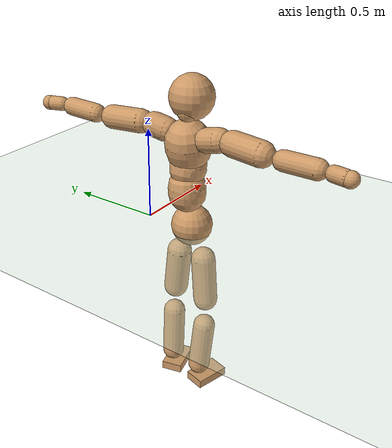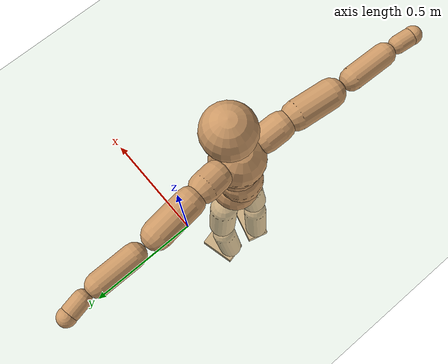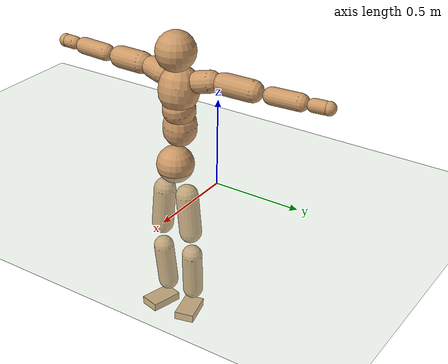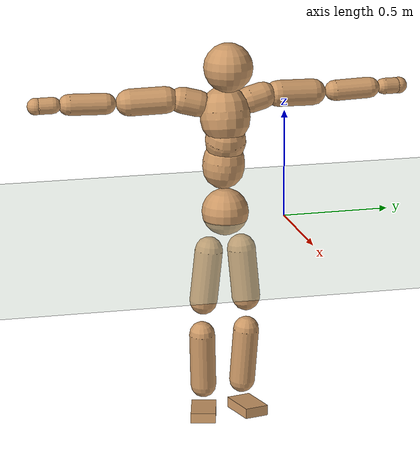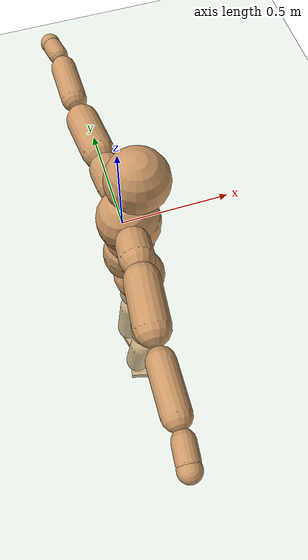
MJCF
<mujoco model="humanoid">
  <compiler coordinate="local"/>
  <default>
    <joint damping="0.0" armature="0.01" stiffness="0.0" limited="true"/>
    <geom conaffinity="1" condim="3" contype="7" margin="0.001" rgba="0.8 0.6 .4 1"/>
  </default>
  <asset>
    <texture type="skybox" builtin="gradient" rgb1=".4 .5 .6" rgb2="0 0 0" width="100" height="100"/>
    <texture builtin="flat" height="1278" mark="cross" markrgb="1 1 1" name="texgeom" random="0.01" rgb1="0.8 0.6 0.4" rgb2="0.8 0.6 0.4" type="cube" width="127"/>
    <texture builtin="checker" height="100" name="texplane" rgb1="0 0 0" rgb2="0.8 0.8 0.8" type="2d" width="100"/>
    <material name="MatPlane" reflectance="0.5" shininess="1" specular="1" texrepeat="60 60" texture="texplane"/>
    <material name="geom" texture="texgeom" texuniform="true"/>
  </asset>
  <worldbody>
    <light cutoff="100" diffuse="1 1 1" dir="-0 0 -1.3" directional="true" exponent="1" pos="0 0 1.3" specular=".1 .1 .1"/>
    <geom conaffinity="1" condim="3" name="floor" pos="0 0 0" rgba="0.8 0.9 0.8 1" size="100 100 .2" type="plane" material="MatPlane"/>
    <body name="Pelvis" pos="-0.0038 -0.2801 0.0365">
      <freejoint name="Pelvis"/>
      <geom type="sphere" contype="1" conaffinity="1" density="500" size="0.1092" pos="0.0000 0.0000 0.0000" name="Pelvis"/>
      <body name="L_Hip" pos="-0.0012 0.0701 -0.1029">
        <joint name="L_Hip_x" type="hinge" pos="0 0 0" axis="1 0 0" stiffness="800" damping="80" armature="0.02" range="-180.0000 180.0000"/>
        <joint name="L_Hip_y" type="hinge" pos="0 0 0" axis="0 1 0" stiffness="800" damping="80" armature="0.02" range="-180.0000 180.0000"/>
        <joint name="L_Hip_z" type="hinge" pos="0 0 0" axis="0 0 1" stiffness="800" damping="80" armature="0.02" range="-180.0000 180.0000"/>
        <geom type="capsule" contype="1" conaffinity="1" density="500" fromto="-0.0007 0.0078 -0.0791 -0.0030 0.0313 -0.3162" size="0.0661" name="L_Hip"/>
        <body name="L_Knee" pos="-0.0037 0.0391 -0.3953">
          <joint name="L_Knee_x" type="hinge" pos="0 0 0" axis="1 0 0" stiffness="800" damping="80" armature="0.02" range="-180.0000 180.0000"/>
          <joint name="L_Knee_y" type="hinge" pos="0 0 0" axis="0 1 0" stiffness="800" damping="80" armature="0.02" range="-180.0000 180.0000"/>
          <joint name="L_Knee_z" type="hinge" pos="0 0 0" axis="0 0 1" stiffness="800" damping="80" armature="0.02" range="-180.0000 180.0000"/>
          <geom type="capsule" contype="1" conaffinity="1" density="500" fromto="-0.0095 -0.0040 -0.0864 -0.0381 -0.0158 -0.3457" size="0.0603" name="L_Knee"/>
          <body name="L_Ankle" pos="-0.0477 -0.0198 -0.4322">
            <joint name="L_Ankle_x" type="hinge" pos="0 0 0" axis="1 0 0" stiffness="800" damping="80" armature="0.02" range="-180.0000 180.0000"/>
            <joint name="L_Ankle_y" type="hinge" pos="0 0 0" axis="0 1 0" stiffness="800" damping="80" armature="0.02" range="-180.0000 180.0000"/>
            <joint name="L_Ankle_z" type="hinge" pos="0 0 0" axis="0 0 1" stiffness="800" damping="80" armature="0.02" range="-180.0000 180.0000"/>
            <geom type="box" contype="1" conaffinity="1" density="500" pos="0.0671 0.0164 -0.0294" size="0.0941 0.0573 0.0241" quat="0.9929 0.0000 0.0000 0.1192" name="L_Ankle"/>
            <body name="L_Toe" pos="0.1342 0.0327 -0.0588">
              <joint name="L_Toe_x" type="hinge" pos="0 0 0" axis="1 0 0" stiffness="500" damping="50" armature="0.02" range="-180.0000 180.0000"/>
              <joint name="L_Toe_y" type="hinge" pos="0 0 0" axis="0 1 0" stiffness="500" damping="50" armature="0.02" range="-180.0000 180.0000"/>
              <joint name="L_Toe_z" type="hinge" pos="0 0 0" axis="0 0 1" stiffness="500" damping="50" armature="0.02" range="-180.0000 180.0000"/>
              <geom type="box" contype="1" conaffinity="1" density="500" pos="0.0000 0.0000 0.0288" size="0.0012 0.0028 0.0012" quat="0.9922 0.0000 0.0000 0.1244" name="L_Toe"/>
            </body>
          </body>
        </body>
      </body>
      <body name="R_Hip" pos="0 -0.0694 -0.1016">
        <joint name="R_Hip_x" type="hinge" pos="0 0 0" axis="1 0 0" stiffness="800" damping="80" armature="0.02" range="-180.0000 180.0000"/>
        <joint name="R_Hip_y" type="hinge" pos="0 0 0" axis="0 1 0" stiffness="800" damping="80" armature="0.02" range="-180.0000 180.0000"/>
        <joint name="R_Hip_z" type="hinge" pos="0 0 0" axis="0 0 1" stiffness="800" damping="80" armature="0.02" range="-180.0000 180.0000"/>
        <geom type="capsule" contype="1" conaffinity="1" density="500" fromto="-0.0025 -0.0080 -0.0815 -0.0099 -0.0322 -0.3261" size="0.0647" name="R_Hip"/>
        <body name="R_Knee" pos="-0.0124 -0.0402 -0.4076">
          <joint name="R_Knee_x" type="hinge" pos="0 0 0" axis="1 0 0" stiffness="800" damping="80" armature="0.02" range="-180.0000 180.0000"/>
          <joint name="R_Knee_y" type="hinge" pos="0 0 0" axis="0 1 0" stiffness="800" damping="80" armature="0.02" range="-180.0000 180.0000"/>
          <joint name="R_Knee_z" type="hinge" pos="0 0 0" axis="0 0 1" stiffness="800" damping="80" armature="0.02" range="-180.0000 180.0000"/>
          <geom type="capsule" contype="1" conaffinity="1" density="500" fromto="-0.0094 0.0042 -0.0869 -0.0374 0.0168 -0.3476" size="0.0598" name="R_Knee"/>
          <body name="R_Ankle" pos="-0.0468 0.021 -0.4345">
            <joint name="R_Ankle_x" type="hinge" pos="0 0 0" axis="1 0 0" stiffness="800" damping="80" armature="0.02" range="-180.0000 180.0000"/>
            <joint name="R_Ankle_y" type="hinge" pos="0 0 0" axis="0 1 0" stiffness="800" damping="80" armature="0.02" range="-180.0000 180.0000"/>
            <joint name="R_Ankle_z" type="hinge" pos="0 0 0" axis="0 0 1" stiffness="800" damping="80" armature="0.02" range="-180.0000 180.0000"/>
            <geom type="box" contype="1" conaffinity="1" density="500" pos="0.0698 -0.0182 -0.0264" size="0.0964 0.058 0.0237" quat="0.9919 0.0000 0.0000 -0.1272" name="R_Ankle"/>
            <body name="R_Toe" pos="0.1396 -0.0364 -0.0528">
              <joint name="R_Toe_x" type="hinge" pos="0 0 0" axis="1 0 0" stiffness="500" damping="50" armature="0.02" range="-180.0000 180.0000"/>
              <joint name="R_Toe_y" type="hinge" pos="0 0 0" axis="0 1 0" stiffness="500" damping="50" armature="0.02" range="-180.0000 180.0000"/>
              <joint name="R_Toe_z" type="hinge" pos="0 0 0" axis="0 0 1" stiffness="500" damping="50" armature="0.02" range="-180.0000 180.0000"/>
              <geom type="box" contype="1" conaffinity="1" density="500" pos="0.0000 0.0000 0.0274" size="0.0013 0.0028 0.0012" quat="0.9929 0.0000 0.0000 -0.1189" name="R_Toe"/>
            </body>
          </body>
        </body>
      </body>
      <body name="Torso" pos="-0.0451 -0.0027 0.1328">
        <joint name="Torso_x" type="hinge" pos="0 0 0" axis="1 0 0" stiffness="1000" damping="100" armature="0.02" range="-180.0000 180.0000"/>
        <joint name="Torso_y" type="hinge" pos="0 0 0" axis="0 1 0" stiffness="1000" damping="100" armature="0.02" range="-180.0000 180.0000"/>
        <joint name="Torso_z" type="hinge" pos="0 0 0" axis="0 0 1" stiffness="1000" damping="100" armature="0.02" range="-180.0000 180.0000"/>
        <geom type="capsule" contype="1" conaffinity="1" density="500" fromto="0.0043 0.0066 0.0989 0.0029 0.0044 0.0660" size="0.0975" name="Torso"/>
        <body name="Spine" pos="0.0072 0.011 0.1649">
          <joint name="Spine_x" type="hinge" pos="0 0 0" axis="1 0 0" stiffness="1000" damping="100" armature="0.02" range="-180.0000 180.0000"/>
          <joint name="Spine_y" type="hinge" pos="0 0 0" axis="0 1 0" stiffness="1000" damping="100" armature="0.02" range="-180.0000 180.0000"/>
          <joint name="Spine_z" type="hinge" pos="0 0 0" axis="0 0 1" stiffness="1000" damping="100" armature="0.02" range="-180.0000 180.0000"/>
          <geom type="capsule" contype="1" conaffinity="1" density="500" fromto="0.0150 -0.0001 0.0406 0.0100 -0.0001 0.0271" size="0.0944" name="Spine"/>
          <body name="Chest" pos="0.0249 -0.0002 0.0677">
            <joint name="Chest_x" type="hinge" pos="0 0 0" axis="1 0 0" stiffness="1000" damping="100" armature="0.02" range="-180.0000 180.0000"/>
            <joint name="Chest_y" type="hinge" pos="0 0 0" axis="0 1 0" stiffness="1000" damping="100" armature="0.02" range="-180.0000 180.0000"/>
            <joint name="Chest_z" type="hinge" pos="0 0 0" axis="0 0 1" stiffness="1000" damping="100" armature="0.02" range="-180.0000 180.0000"/>
            <geom type="capsule" contype="1" conaffinity="1" density="500" fromto="-0.0204 -0.0020 0.1043 -0.0136 -0.0013 0.0696" size="0.1163" name="Chest"/>
            <body name="Neck" pos="-0.0354 -0.0041 0.244">
              <joint name="Neck_x" type="hinge" pos="0 0 0" axis="1 0 0" stiffness="500" damping="50" armature="0.02" range="-180.0000 180.0000"/>
              <joint name="Neck_y" type="hinge" pos="0 0 0" axis="0 1 0" stiffness="500" damping="50" armature="0.02" range="-180.0000 180.0000"/>
              <joint name="Neck_z" type="hinge" pos="0 0 0" axis="0 0 1" stiffness="500" damping="50" armature="0.02" range="-180.0000 180.0000"/>
              <geom type="capsule" contype="1" conaffinity="1" density="500" fromto="0.0111 0.0017 0.0144 0.0446 0.0067 0.0577" size="0.0532" name="Neck"/>
              <body name="Head" pos="0.0557 0.0084 0.0721">
                <joint name="Head_x" type="hinge" pos="0 0 0" axis="1 0 0" stiffness="500" damping="50" armature="0.02" range="-180.0000 180.0000"/>
                <joint name="Head_y" type="hinge" pos="0 0 0" axis="0 1 0" stiffness="500" damping="50" armature="0.02" range="-180.0000 180.0000"/>
                <joint name="Head_z" type="hinge" pos="0 0 0" axis="0 0 1" stiffness="500" damping="50" armature="0.02" range="-180.0000 180.0000"/>
                <geom type="sphere" contype="1" conaffinity="1" density="500" size="0.1140" pos="0.0000 0.0000 0.0000" name="Head"/>
              </body>
            </body>
            <body name="L_Thorax" pos="-0.0314 0.0948 0.1413">
              <joint name="L_Thorax_x" type="hinge" pos="0 0 0" axis="1 0 0" stiffness="500" damping="50" armature="0.02" range="-180.0000 180.0000"/>
              <joint name="L_Thorax_y" type="hinge" pos="0 0 0" axis="0 1 0" stiffness="500" damping="50" armature="0.02" range="-180.0000 180.0000"/>
              <joint name="L_Thorax_z" type="hinge" pos="0 0 0" axis="0 0 1" stiffness="500" damping="50" armature="0.02" range="-180.0000 180.0000"/>
              <geom type="capsule" contype="1" conaffinity="1" density="500" fromto="-0.0032 0.0221 0.0051 -0.0126 0.0885 0.0203" size="0.0629" name="L_Thorax"/>
              <body name="L_Shoulder" pos="-0.0158 0.1106 0.0253">
                <joint name="L_Shoulder_x" type="hinge" pos="0 0 0" axis="1 0 0" stiffness="500" damping="50" armature="0.02" range="-720.0000 720.0000"/>
                <joint name="L_Shoulder_y" type="hinge" pos="0 0 0" axis="0 1 0" stiffness="500" damping="50" armature="0.02" range="-720.0000 720.0000"/>
                <joint name="L_Shoulder_z" type="hinge" pos="0 0 0" axis="0 0 1" stiffness="500" damping="50" armature="0.02" range="-720.0000 720.0000"/>
                <geom type="capsule" contype="1" conaffinity="1" density="500" fromto="-0.0058 0.0559 -0.0023 -0.0232 0.2237 -0.0091" size="0.0618" name="L_Shoulder"/>
                <body name="L_Elbow" pos="-0.029 0.2796 -0.0114">
                  <joint name="L_Elbow_x" type="hinge" pos="0 0 0" axis="1 0 0" stiffness="500" damping="50" armature="0.02" range="-720.0000 720.0000"/>
                  <joint name="L_Elbow_y" type="hinge" pos="0 0 0" axis="0 1 0" stiffness="500" damping="50" armature="0.02" range="-720.0000 720.0000"/>
                  <joint name="L_Elbow_z" type="hinge" pos="0 0 0" axis="0 0 1" stiffness="500" damping="50" armature="0.02" range="-720.0000 720.0000"/>
                  <geom type="capsule" contype="1" conaffinity="1" density="500" fromto="-0.0006 0.0549 0.0016 -0.0024 0.2195 0.0065" size="0.0487" name="L_Elbow"/>
                  <body name="L_Wrist" pos="-0.003 0.2744 0.0081">
                    <joint name="L_Wrist_x" type="hinge" pos="0 0 0" axis="1 0 0" stiffness="300" damping="30" armature="0.02" range="-180.0000 180.0000"/>
                    <joint name="L_Wrist_y" type="hinge" pos="0 0 0" axis="0 1 0" stiffness="300" damping="30" armature="0.02" range="-180.0000 180.0000"/>
                    <joint name="L_Wrist_z" type="hinge" pos="0 0 0" axis="0 0 1" stiffness="300" damping="30" armature="0.02" range="-180.0000 180.0000"/>
                    <geom type="capsule" contype="1" conaffinity="1" density="500" fromto="-0.0039 0.0193 -0.0008 -0.0156 0.0773 -0.0031" size="0.0374" name="L_Wrist"/>
                    <body name="L_Hand" pos="-0.0195 0.0967 -0.0039">
                      <joint name="L_Hand_x" type="hinge" pos="0 0 0" axis="1 0 0" stiffness="300" damping="30" armature="0.02" range="-180.0000 180.0000"/>
                      <joint name="L_Hand_y" type="hinge" pos="0 0 0" axis="0 1 0" stiffness="300" damping="30" armature="0.02" range="-180.0000 180.0000"/>
                      <joint name="L_Hand_z" type="hinge" pos="0 0 0" axis="0 0 1" stiffness="300" damping="30" armature="0.02" range="-180.0000 180.0000"/>
                      <geom type="sphere" contype="1" conaffinity="1" density="500" size="0.0385" pos="0.0000 0.0000 0.0000" name="L_Hand"/>
                    </body>
                  </body>
                </body>
              </body>
            </body>
            <body name="R_Thorax" pos="-0.0351 -0.1005 0.1363">
              <joint name="R_Thorax_x" type="hinge" pos="0 0 0" axis="1 0 0" stiffness="500" damping="50" armature="0.02" range="-180.0000 180.0000"/>
              <joint name="R_Thorax_y" type="hinge" pos="0 0 0" axis="0 1 0" stiffness="500" damping="50" armature="0.02" range="-180.0000 180.0000"/>
              <joint name="R_Thorax_z" type="hinge" pos="0 0 0" axis="0 0 1" stiffness="500" damping="50" armature="0.02" range="-180.0000 180.0000"/>
              <geom type="capsule" contype="1" conaffinity="1" density="500" fromto="-0.0019 -0.0239 0.0061 -0.0076 -0.0955 0.0243" size="0.0618" name="R_Thorax"/>
              <body name="R_Shoulder" pos="-0.0095 -0.1194 0.0304">
                <joint name="R_Shoulder_x" type="hinge" pos="0 0 0" axis="1 0 0" stiffness="500" damping="50" armature="0.02" range="-720.0000 720.0000"/>
                <joint name="R_Shoulder_y" type="hinge" pos="0 0 0" axis="0 1 0" stiffness="500" damping="50" armature="0.02" range="-720.0000 720.0000"/>
                <joint name="R_Shoulder_z" type="hinge" pos="0 0 0" axis="0 0 1" stiffness="500" damping="50" armature="0.02" range="-720.0000 720.0000"/>
                <geom type="capsule" contype="1" conaffinity="1" density="500" fromto="-0.0053 -0.0546 -0.0022 -0.0213 -0.2185 -0.0087" size="0.0633" name="R_Shoulder"/>
                <body name="R_Elbow" pos="-0.0266 -0.2732 -0.0109">
                  <joint name="R_Elbow_x" type="hinge" pos="0 0 0" axis="1 0 0" stiffness="500" damping="50" armature="0.02" range="-720.0000 720.0000"/>
                  <joint name="R_Elbow_y" type="hinge" pos="0 0 0" axis="0 1 0" stiffness="500" damping="50" armature="0.02" range="-720.0000 720.0000"/>
                  <joint name="R_Elbow_z" type="hinge" pos="0 0 0" axis="0 0 1" stiffness="500" damping="50" armature="0.02" range="-720.0000 720.0000"/>
                  <geom type="capsule" contype="1" conaffinity="1" density="500" fromto="-0.0019 -0.0555 0.0011 -0.0078 -0.2222 0.0044" size="0.0496" name="R_Elbow"/>
                  <body name="R_Wrist" pos="-0.0097 -0.2777 0.0056">
                    <joint name="R_Wrist_x" type="hinge" pos="0 0 0" axis="1 0 0" stiffness="300" damping="30" armature="0.02" range="-180.0000 180.0000"/>
                    <joint name="R_Wrist_y" type="hinge" pos="0 0 0" axis="0 1 0" stiffness="300" damping="30" armature="0.02" range="-180.0000 180.0000"/>
                    <joint name="R_Wrist_z" type="hinge" pos="0 0 0" axis="0 0 1" stiffness="300" damping="30" armature="0.02" range="-180.0000 180.0000"/>
                    <geom type="capsule" contype="1" conaffinity="1" density="500" fromto="-0.0020 -0.0194 -0.0006 -0.0081 -0.0778 -0.0025" size="0.0383" name="R_Wrist"/>
                    <body name="R_Hand" pos="-0.0101 -0.0972 -0.0031">
                      <joint name="R_Hand_x" type="hinge" pos="0 0 0" axis="1 0 0" stiffness="300" damping="30" armature="0.02" range="-180.0000 180.0000"/>
                      <joint name="R_Hand_y" type="hinge" pos="0 0 0" axis="0 1 0" stiffness="300" damping="30" armature="0.02" range="-180.0000 180.0000"/>
                      <joint name="R_Hand_z" type="hinge" pos="0 0 0" axis="0 0 1" stiffness="300" damping="30" armature="0.02" range="-180.0000 180.0000"/>
                      <geom type="sphere" contype="1" conaffinity="1" density="500" size="0.0393" pos="0.0000 0.0000 0.0000" name="R_Hand"/>
                    </body>
                  </body>
                </body>
              </body>
            </body>
          </body>
        </body>
      </body>
    </body>
  </worldbody>
  <actuator>
    <motor name="L_Hip_x" joint="L_Hip_x" gear="500"/>
    <motor name="L_Hip_y" joint="L_Hip_y" gear="500"/>
    <motor name="L_Hip_z" joint="L_Hip_z" gear="500"/>
    <motor name="L_Knee_x" joint="L_Knee_x" gear="500"/>
    <motor name="L_Knee_y" joint="L_Knee_y" gear="500"/>
    <motor name="L_Knee_z" joint="L_Knee_z" gear="500"/>
    <motor name="L_Ankle_x" joint="L_Ankle_x" gear="500"/>
    <motor name="L_Ankle_y" joint="L_Ankle_y" gear="500"/>
    <motor name="L_Ankle_z" joint="L_Ankle_z" gear="500"/>
    <motor name="L_Toe_x" joint="L_Toe_x" gear="500"/>
    <motor name="L_Toe_y" joint="L_Toe_y" gear="500"/>
    <motor name="L_Toe_z" joint="L_Toe_z" gear="500"/>
    <motor name="R_Hip_x" joint="R_Hip_x" gear="500"/>
    <motor name="R_Hip_y" joint="R_Hip_y" gear="500"/>
    <motor name="R_Hip_z" joint="R_Hip_z" gear="500"/>
    <motor name="R_Knee_x" joint="R_Knee_x" gear="500"/>
    <motor name="R_Knee_y" joint="R_Knee_y" gear="500"/>
    <motor name="R_Knee_z" joint="R_Knee_z" gear="500"/>
    <motor name="R_Ankle_x" joint="R_Ankle_x" gear="500"/>
    <motor name="R_Ankle_y" joint="R_Ankle_y" gear="500"/>
    <motor name="R_Ankle_z" joint="R_Ankle_z" gear="500"/>
    <motor name="R_Toe_x" joint="R_Toe_x" gear="500"/>
    <motor name="R_Toe_y" joint="R_Toe_y" gear="500"/>
    <motor name="R_Toe_z" joint="R_Toe_z" gear="500"/>
    <motor name="Torso_x" joint="Torso_x" gear="500"/>
    <motor name="Torso_y" joint="Torso_y" gear="500"/>
    <motor name="Torso_z" joint="Torso_z" gear="500"/>
    <motor name="Spine_x" joint="Spine_x" gear="500"/>
    <motor name="Spine_y" joint="Spine_y" gear="500"/>
    <motor name="Spine_z" joint="Spine_z" gear="500"/>
    <motor name="Chest_x" joint="Chest_x" gear="500"/>
    <motor name="Chest_y" joint="Chest_y" gear="500"/>
    <motor name="Chest_z" joint="Chest_z" gear="500"/>
    <motor name="Neck_x" joint="Neck_x" gear="500"/>
    <motor name="Neck_y" joint="Neck_y" gear="500"/>
    <motor name="Neck_z" joint="Neck_z" gear="500"/>
    <motor name="Head_x" joint="Head_x" gear="500"/>
    <motor name="Head_y" joint="Head_y" gear="500"/>
    <motor name="Head_z" joint="Head_z" gear="500"/>
    <motor name="L_Thorax_x" joint="L_Thorax_x" gear="500"/>
    <motor name="L_Thorax_y" joint="L_Thorax_y" gear="500"/>
    <motor name="L_Thorax_z" joint="L_Thorax_z" gear="500"/>
    <motor name="L_Shoulder_x" joint="L_Shoulder_x" gear="500"/>
    <motor name="L_Shoulder_y" joint="L_Shoulder_y" gear="500"/>
    <motor name="L_Shoulder_z" joint="L_Shoulder_z" gear="500"/>
    <motor name="L_Elbow_x" joint="L_Elbow_x" gear="500"/>
    <motor name="L_Elbow_y" joint="L_Elbow_y" gear="500"/>
    <motor name="L_Elbow_z" joint="L_Elbow_z" gear="500"/>
    <motor name="L_Wrist_x" joint="L_Wrist_x" gear="500"/>
    <motor name="L_Wrist_y" joint="L_Wrist_y" gear="500"/>
    <motor name="L_Wrist_z" joint="L_Wrist_z" gear="500"/>
    <motor name="L_Hand_x" joint="L_Hand_x" gear="500"/>
    <motor name="L_Hand_y" joint="L_Hand_y" gear="500"/>
    <motor name="L_Hand_z" joint="L_Hand_z" gear="500"/>
    <motor name="R_Thorax_x" joint="R_Thorax_x" gear="500"/>
    <motor name="R_Thorax_y" joint="R_Thorax_y" gear="500"/>
    <motor name="R_Thorax_z" joint="R_Thorax_z" gear="500"/>
    <motor name="R_Shoulder_x" joint="R_Shoulder_x" gear="500"/>
    <motor name="R_Shoulder_y" joint="R_Shoulder_y" gear="500"/>
    <motor name="R_Shoulder_z" joint="R_Shoulder_z" gear="500"/>
    <motor name="R_Elbow_x" joint="R_Elbow_x" gear="500"/>
    <motor name="R_Elbow_y" joint="R_Elbow_y" gear="500"/>
    <motor name="R_Elbow_z" joint="R_Elbow_z" gear="500"/>
    <motor name="R_Wrist_x" joint="R_Wrist_x" gear="500"/>
    <motor name="R_Wrist_y" joint="R_Wrist_y" gear="500"/>
    <motor name="R_Wrist_z" joint="R_Wrist_z" gear="500"/>
    <motor name="R_Hand_x" joint="R_Hand_x" gear="500"/>
    <motor name="R_Hand_y" joint="R_Hand_y" gear="500"/>
    <motor name="R_Hand_z" joint="R_Hand_z" gear="500"/>
  </actuator>
  <contact>
    <exclude body1="Torso" body2="Chest"/>
    <exclude body1="Head" body2="Chest"/>
    <exclude body1="R_Knee" body2="R_Toe"/>
    <exclude body1="R_Knee" body2="L_Ankle"/>
    <exclude body1="R_Knee" body2="L_Toe"/>
    <exclude body1="L_Knee" body2="L_Toe"/>
    <exclude body1="L_Knee" body2="R_Ankle"/>
    <exclude body1="L_Knee" body2="R_Toe"/>
    <exclude body1="L_Shoulder" body2="Chest"/>
    <exclude body1="R_Shoulder" body2="Chest"/>
  </contact>
  <sensor/>
  <size njmax="700" nconmax="700"/>
</mujoco>
